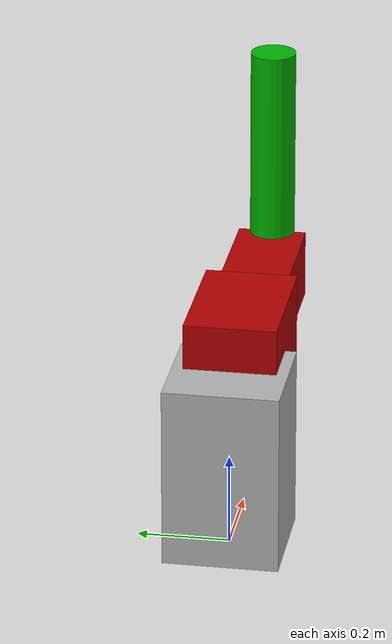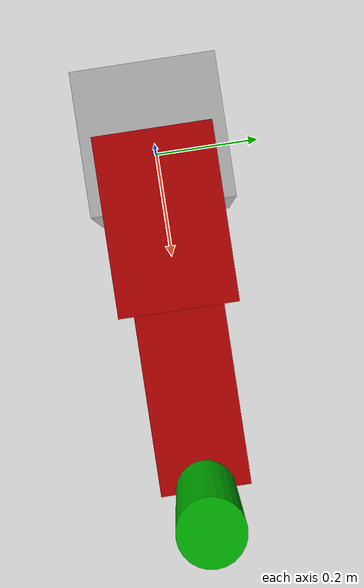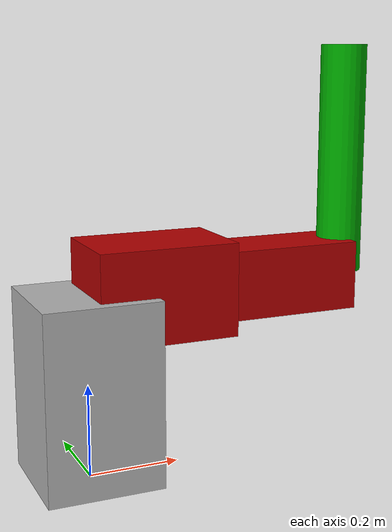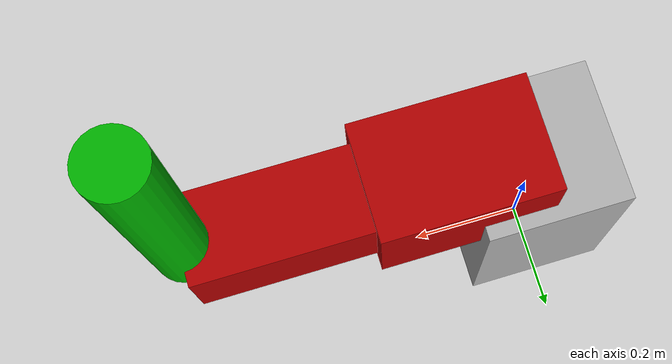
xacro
<?xml version="1.0"?>
<robot xmlns:xacro="http://wiki.ros.org/xacro"
       name="homework_scara" >

  <!-- homework_scara -->
  <xacro:include filename="./homework_scara.urdf.xacro" />

  <!-- arm -->
  <xacro:homework_scara_robot prefix="" />

  <link name="world" />

  <joint name="world_joint" type="fixed">
    <parent link="world" />
    <child link="base_link" />
    <origin xyz="0 0 0" rpy="0 0 0" />
  </joint>

</robot>

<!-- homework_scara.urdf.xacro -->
<robot xmlns:xacro="http://wiki.ros.org/xacro">

  <xacro:macro name="homework_scara_robot" params="prefix">

    <!-- Joint limits -->
    <xacro:property name="shoulder_lower_limit" value="${-2.5}" />
    <xacro:property name="shoulder_upper_limit" value="${ 2.5}" />
    <xacro:property name="elbow_lower_limit" value="${-2.0}" />
    <xacro:property name="elbow_upper_limit" value="${ 2.0}" />
    <xacro:property name="wrist_lower_limit" value="${-3.0}" />
    <xacro:property name="wrist_upper_limit" value="${ 3.0}" />
    <xacro:property name="probe_lower_limit" value="${0.00}" />
    <xacro:property name="probe_upper_limit" value="${0.45}" />

    <!-- Kinematic model -->
    <xacro:property name="L0h" value="0.40" />
    <xacro:property name="L0l" value="0.25" />
    <xacro:property name="L1h" value="0.30" />
    <xacro:property name="L1l" value="0.20" />
    <xacro:property name="L2h" value="0.30" />
    <xacro:property name="L2l" value="0.15" />
    <xacro:property name="L4h" value="0.50" />
    <xacro:property name="L4r" value="0.05" />

    <xacro:property name="d0" value="${L0h}" />
    <xacro:property name="a1" value="${L1h}" />
    <xacro:property name="a2" value="${L2h}" />
    <xacro:property name="A3" value="${pi}" />

    <xacro:property name="base_height" value="${L0h}" />
    <xacro:property name="base_size" value="${L0l}" />
    <xacro:property name="shoulder_length" value="${L1h}" />
    <xacro:property name="shoulder_size" value="${L1l}" />
    <xacro:property name="elbow_length" value="${L2h}" />
    <xacro:property name="elbow_size" value="${L2l}" />
    <xacro:property name="probe_length" value="${L4h}" />
    <xacro:property name="probe_radius" value="${L4r}" />
    <xacro:property name="ee_size" value="0.05" />

    <material name="fixed">
      <color rgba="0.7 0.7 0.7 1.0"/>
    </material>

    <material name="revolute">
      <color rgba="0.7 0.0 0.0 1.0"/>
    </material>

    <material name="prismatic">
      <color rgba="0.0 0.7 0.0 1.0"/>
    </material>

    <link name="${prefix}base_link" >
      <visual>
        <geometry>
          <box size="${base_size} ${base_size} ${base_height}"/>
        </geometry>
        <origin xyz="0 0 ${base_height / 2}" rpy="0 0 0" />
        <material name="fixed" />
      </visual>
    </link>

    <joint name="${prefix}shoulder_joint" type="revolute">
      <parent link="${prefix}base_link" />
      <child link="${prefix}shoulder_link" />
      <origin xyz="0 0 ${base_height}" rpy="0 0 0" />
      <axis xyz="0 0 1" />
      <limit lower="${shoulder_lower_limit}" upper="${shoulder_upper_limit}" effort="150.0" velocity="3.15" />
    </joint>

    <link name="${prefix}shoulder_link">
      <visual>
        <geometry>
          <box size="${shoulder_length} ${shoulder_size} ${shoulder_size}"/>
        </geometry>
        <origin xyz="${shoulder_length / 2} 0 0" rpy="0 0 0" />
        <material name="revolute" />
      </visual>
    </link>

    <joint name="${prefix}elbow_joint" type="revolute">
      <parent link="${prefix}shoulder_link" />
      <child link="${prefix}elbow_link" />
      <origin xyz="${shoulder_length} 0 0" rpy="0 0 0" />
      <axis xyz="0 0 1" />
      <limit lower="${elbow_lower_limit}" upper="${elbow_upper_limit}" effort="150.0" velocity="3.15" />
    </joint>

    <link name="${prefix}elbow_link">
      <visual>
        <geometry>
          <box size="${elbow_length} ${elbow_size} ${elbow_size}"/>
        </geometry>
        <origin xyz="${elbow_length / 2} 0 0" rpy="0 0 0" />
        <material name="revolute" />
      </visual>
    </link>

    <joint name="${prefix}wrist_joint" type="revolute">
      <parent link="${prefix}elbow_link" />
      <child link = "${prefix}wrist_link" />
      <origin xyz="${elbow_length} 0 0" rpy="0 0 0" />
      <axis xyz="0 0 1" />
      <limit lower="${wrist_lower_limit}" upper="${wrist_upper_limit}" effort="150.0" velocity="3.15" />
    </joint>

    <link name="${prefix}wrist_link" />

    <joint name="${prefix}probe_joint" type="prismatic">
      <parent link="${prefix}wrist_link" />
      <child link="${prefix}probe_link" />
      <origin xyz="0 0 0" rpy="${pi} 0 0" />
      <axis xyz="0 0 1" />
      <limit lower="${probe_lower_limit}" upper="${probe_upper_limit}" effort="150.0" velocity="3.15" />
    </joint>

    <link name="${prefix}probe_link">
      <visual>
        <geometry>
          <cylinder length="${probe_length}" radius="${probe_radius}" />
        </geometry>
        <origin xyz="0 0 ${-probe_length / 2}" rpy="0 0 0" />
        <material name="prismatic" />
      </visual>
    </link>

    <joint name="${prefix}ee_fixed_joint" type="fixed">
      <parent link="${prefix}probe_link" />
      <child link="${prefix}ee_link" />
      <origin xyz="0 0 0" rpy="0 0 0" />
    </joint>

    <link name="${prefix}ee_link">
      <visual>
        <geometry>
          <box size="${ee_size} ${ee_size} ${ee_size}" />
        </geometry>
        <origin xyz="0 0 ${ee_size / 2}" rpy="0 0 0" />
        <material name="fixed" />
      </visual>
    </link>

    <joint name="${prefix}tool0_fixed_joint" type="fixed">
      <parent link="${prefix}ee_link" />
      <child link="${prefix}tool0" />
      <origin xyz="0 0 ${ee_size}" rpy="0 0 0" />
    </joint>

    <link name="tool0" />

  </xacro:macro>
</robot>
